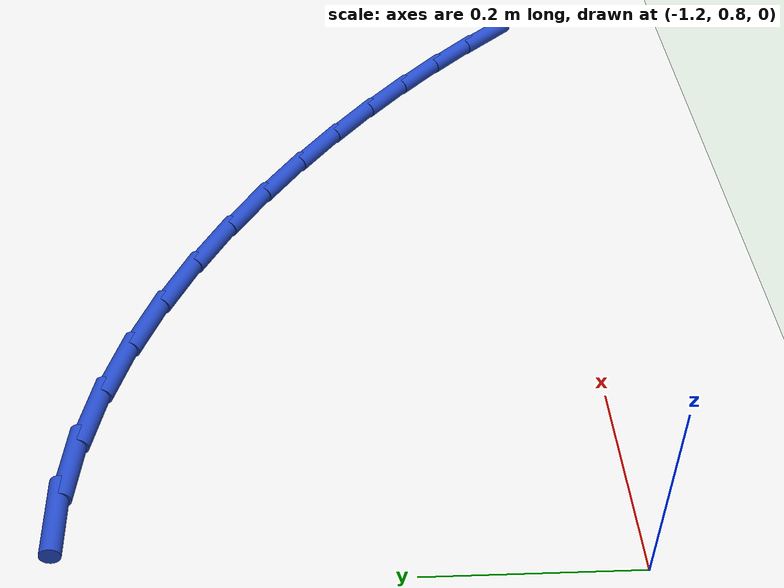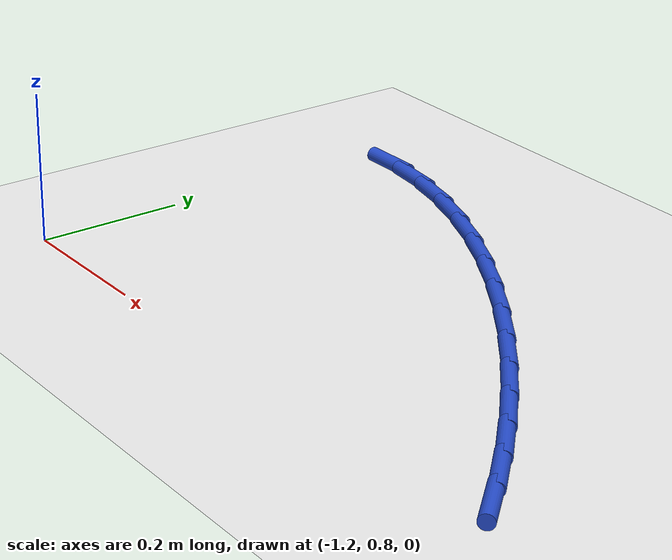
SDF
<sdf version="1.6">
 <world name="default">
  <model name="ground_plane">
   <static>1</static>
   <link name="link">
    <collision name="collision">
     <geometry><plane><normal>0 0 1</normal><size>100 100</size></plane></geometry>
     <surface><friction><ode><mu>100</mu><mu2>50</mu2></ode></friction></surface>
    </collision>
    <visual name="visual">
     <cast_shadows>0</cast_shadows>
     <geometry><plane><normal>0 0 1</normal><size>100 100</size></plane></geometry>
     <material>
      <script><uri>file://media/materials/scripts/gazebo.material</uri><name>Gazebo/WhiteGlow</name></script>
     </material>
    </visual>
   </link>
  </model>
  <model name="line">
   <link name="link_15">
    <pose>-0.35994517811328586 0.8425174497663157 0.01 0 1.57 -0.8353419611569347</pose>
    <collision name="collision">
     <geometry><cylinder><radius>0.01</radius><length>0.08</length></cylinder></geometry>
    </collision>
    <visual name="visual">
     <material>
      <script><name>Gazebo/Blue</name><uri>file://media/materials/scripts/gazebo.material</uri></script>
     </material>
     <geometry><cylinder><radius>0.01</radius><length>0.08</length></cylinder></geometry>
    </visual>
   </link>
   <link name="link_16">
    <pose>-0.4025217237131274 0.8895743562335351 0.01 0 1.57 -0.7968093568803698</pose>
    <collision name="collision">
     <geometry><cylinder><radius>0.01</radius><length>0.08</length></cylinder></geometry>
    </collision>
    <visual name="visual">
     <material>
      <script><name>Gazebo/Blue</name><uri>file://media/materials/scripts/gazebo.material</uri></script>
     </material>
     <geometry><cylinder><radius>0.01</radius><length>0.08</length></cylinder></geometry>
    </visual>
   </link>
   <link name="link_17">
    <pose>-0.4477094460502369 0.9358053201700796 0.01 0 1.57 -0.7595254018021983</pose>
    <collision name="collision">
     <geometry><cylinder><radius>0.01</radius><length>0.08</length></cylinder></geometry>
    </collision>
    <visual name="visual">
     <material>
      <script><name>Gazebo/Blue</name><uri>file://media/materials/scripts/gazebo.material</uri></script>
     </material>
     <geometry><cylinder><radius>0.01</radius><length>0.08</length></cylinder></geometry>
    </visual>
   </link>
   <link name="link_18">
    <pose>-0.49562104516167554 0.9812997090388543 0.01 0 1.57 -0.7235740268168522</pose>
    <collision name="collision">
     <geometry><cylinder><radius>0.01</radius><length>0.08</length></cylinder></geometry>
    </collision>
    <visual name="visual">
     <material>
      <script><name>Gazebo/Blue</name><uri>file://media/materials/scripts/gazebo.material</uri></script>
     </material>
     <geometry><cylinder><radius>0.01</radius><length>0.08</length></cylinder></geometry>
    </visual>
   </link>
   <link name="link_19">
    <pose>-0.5463408123151204 1.0261061169185601 0.01 0 1.57 -0.6871130879967428</pose>
    <collision name="collision">
     <geometry><cylinder><radius>0.01</radius><length>0.08</length></cylinder></geometry>
    </collision>
    <visual name="visual">
     <material>
      <script><name>Gazebo/Blue</name><uri>file://media/materials/scripts/gazebo.material</uri></script>
     </material>
     <geometry><cylinder><radius>0.01</radius><length>0.08</length></cylinder></geometry>
    </visual>
   </link>
   <link name="link_20">
    <pose>-0.5996626753093828 1.0698563968064743 0.01 0 1.57 -0.6483353658577509</pose>
    <collision name="collision">
     <geometry><cylinder><radius>0.01</radius><length>0.08</length></cylinder></geometry>
    </collision>
    <visual name="visual">
     <material>
      <script><name>Gazebo/Blue</name><uri>file://media/materials/scripts/gazebo.material</uri></script>
     </material>
     <geometry><cylinder><radius>0.01</radius><length>0.08</length></cylinder></geometry>
    </visual>
   </link>
   <link name="link_21">
    <pose>-0.6552105816028753 1.1119384392236198 0.01 0 1.57 -0.6062874085395543</pose>
    <collision name="collision">
     <geometry><cylinder><radius>0.01</radius><length>0.08</length></cylinder></geometry>
    </collision>
    <visual name="visual">
     <material>
      <script><name>Gazebo/Blue</name><uri>file://media/materials/scripts/gazebo.material</uri></script>
     </material>
     <geometry><cylinder><radius>0.01</radius><length>0.08</length></cylinder></geometry>
    </visual>
   </link>
   <link name="link_22">
    <pose>-0.7126063322459361 1.1517370540816523 0.01 0 1.57 -0.559931274624578</pose>
    <collision name="collision">
     <geometry><cylinder><radius>0.01</radius><length>0.08</length></cylinder></geometry>
    </collision>
    <visual name="visual">
     <material>
      <script><name>Gazebo/Blue</name><uri>file://media/materials/scripts/gazebo.material</uri></script>
     </material>
     <geometry><cylinder><radius>0.01</radius><length>0.08</length></cylinder></geometry>
    </visual>
   </link>
   <link name="link_23">
    <pose>-0.7714717282889029 1.1886370512922262 0.01 0 1.57 -0.5080772035603782</pose>
    <collision name="collision">
     <geometry><cylinder><radius>0.01</radius><length>0.08</length></cylinder></geometry>
    </collision>
    <visual name="visual">
     <material>
      <script><name>Gazebo/Blue</name><uri>file://media/materials/scripts/gazebo.material</uri></script>
     </material>
     <geometry><cylinder><radius>0.01</radius><length>0.08</length></cylinder></geometry>
    </visual>
   </link>
   <link name="link_24">
    <pose>-0.8314285707821149 1.222023240766999 0.01 0 1.57 -0.4493342152705867</pose>
    <collision name="collision">
     <geometry><cylinder><radius>0.01</radius><length>0.08</length></cylinder></geometry>
    </collision>
    <visual name="visual">
     <material>
      <script><name>Gazebo/Blue</name><uri>file://media/materials/scripts/gazebo.material</uri></script>
     </material>
     <geometry><cylinder><radius>0.01</radius><length>0.08</length></cylinder></geometry>
    </visual>
   </link>
   <link name="link_25">
    <pose>-0.8920986607759096 1.251280432417625 0.01 0 1.57 -0.3820732136703362</pose>
    <collision name="collision">
     <geometry><cylinder><radius>0.01</radius><length>0.08</length></cylinder></geometry>
    </collision>
    <visual name="visual">
     <material>
      <script><name>Gazebo/Blue</name><uri>file://media/materials/scripts/gazebo.material</uri></script>
     </material>
     <geometry><cylinder><radius>0.01</radius><length>0.08</length></cylinder></geometry>
    </visual>
   </link>
   <link name="link_26">
    <pose>-0.9531037993206253 1.2757934361557601 0.01 0 1.57 -0.3044234525830033</pose>
    <collision name="collision">
     <geometry><cylinder><radius>0.01</radius><length>0.08</length></cylinder></geometry>
    </collision>
    <visual name="visual">
     <material>
      <script><name>Gazebo/Blue</name><uri>file://media/materials/scripts/gazebo.material</uri></script>
     </material>
     <geometry><cylinder><radius>0.01</radius><length>0.08</length></cylinder></geometry>
    </visual>
   </link>
   <link name="link_27">
    <pose>-1.0140657874666004 1.2949470618930596 0.01 0 1.57 -0.21434534609782818</pose>
    <collision name="collision">
     <geometry><cylinder><radius>0.01</radius><length>0.08</length></cylinder></geometry>
    </collision>
    <visual name="visual">
     <material>
      <script><name>Gazebo/Blue</name><uri>file://media/materials/scripts/gazebo.material</uri></script>
     </material>
     <geometry><cylinder><radius>0.01</radius><length>0.08</length></cylinder></geometry>
    </visual>
   </link>
   <link name="link_28">
    <pose>-1.074606426264173 1.30812611954118 0.01 0 1.57 -0.10985356872461703</pose>
    <collision name="collision">
     <geometry><cylinder><radius>0.01</radius><length>0.08</length></cylinder></geometry>
    </collision>
    <visual name="visual">
     <material>
      <script><name>Gazebo/Blue</name><uri>file://media/materials/scripts/gazebo.material</uri></script>
     </material>
     <geometry><cylinder><radius>0.01</radius><length>0.08</length></cylinder></geometry>
    </visual>
   </link>
   <link name="link_29">
    <pose>-1.1343475167636816 1.3147154190117758 0.01 0 1.57 0.010512140931123274</pose>
    <collision name="collision">
     <geometry><cylinder><radius>0.01</radius><length>0.08</length></cylinder></geometry>
    </collision>
    <visual name="visual">
     <material>
      <script><name>Gazebo/Blue</name><uri>file://media/materials/scripts/gazebo.material</uri></script>
     </material>
     <geometry><cylinder><radius>0.01</radius><length>0.08</length></cylinder></geometry>
    </visual>
   </link>
  </model>
 </world>
</sdf>
